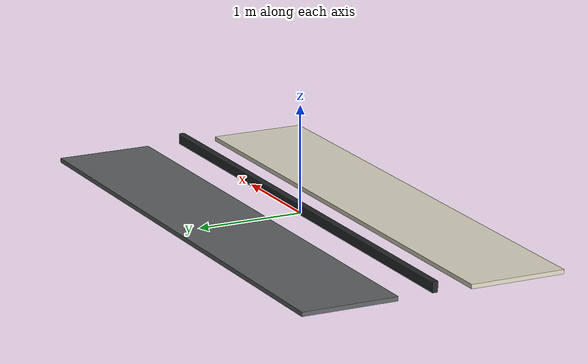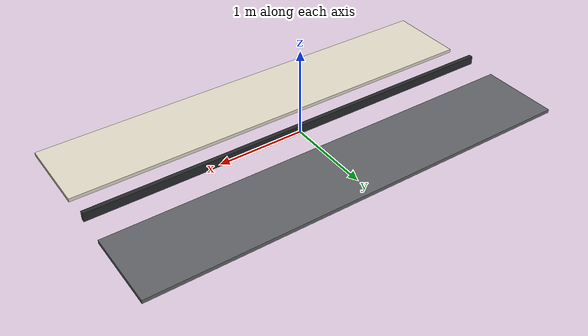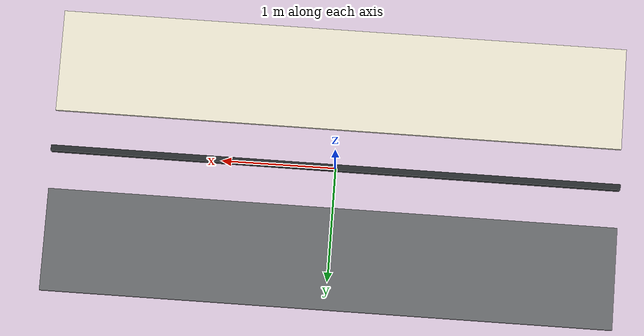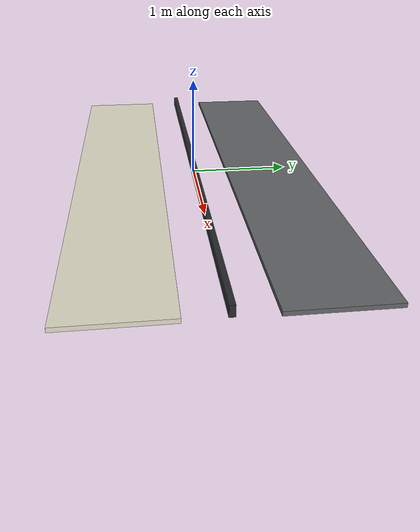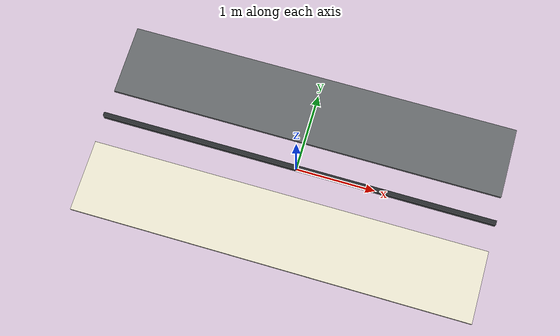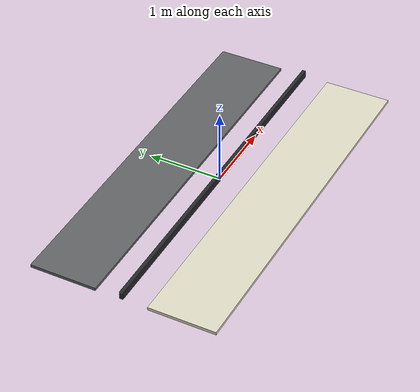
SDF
<?xml version="1.0"?>
<sdf version="1.9">
  <world name="friction_test">
    <plugin filename="gz-sim-physics-system" name="gz::sim::systems::Physics"/>
    <plugin filename="gz-sim-user-commands-system" name="gz::sim::systems::UserCommands"/>
    <plugin filename="gz-sim-scene-broadcaster-system" name="gz::sim::systems::SceneBroadcaster"/>
    <plugin filename="gz-sim-sensors-system" name="gz::sim::systems::Sensors">
      <render_engine>ogre2</render_engine>
    </plugin>
    <plugin filename="gz-sim-imu-system" name="gz::sim::systems::Imu"/>

    <gravity>0 0 -9.80665</gravity>

    <light name="sun" type="directional">
      <cast_shadows>true</cast_shadows>
      <pose>0 0 5 0 0 0</pose>
      <diffuse>0.9 0.9 0.85 1</diffuse>
      <specular>0.2 0.2 0.2 1</specular>
      <direction>-0.5 0.2 -1</direction>
    </light>

    <model name="normal_friction_lane">
      <static>true</static>
      <pose>0 0.8 0 0 0 0</pose>
      <link name="link">
        <collision name="collision">
          <geometry><box><size>5.0 0.9 0.04</size></box></geometry>
          <surface>
            <friction><ode><mu>1.0</mu><mu2>1.0</mu2></ode></friction>
          </surface>
        </collision>
        <visual name="visual">
          <geometry><box><size>5.0 0.9 0.04</size></box></geometry>
          <material><diffuse>0.38 0.39 0.40 1</diffuse></material>
        </visual>
      </link>
    </model>

    <model name="low_friction_lane">
      <static>true</static>
      <pose>0 -0.8 0 0 0 0</pose>
      <link name="link">
        <collision name="collision">
          <geometry><box><size>5.0 0.9 0.04</size></box></geometry>
          <surface>
            <friction><ode><mu>0.12</mu><mu2>0.08</mu2></ode></friction>
          </surface>
        </collision>
        <visual name="visual">
          <geometry><box><size>5.0 0.9 0.04</size></box></geometry>
          <material><diffuse>0.88 0.86 0.78 1</diffuse></material>
        </visual>
      </link>
    </model>

    <model name="center_divider">
      <static>true</static>
      <pose>0 0 0.05 0 0 0</pose>
      <link name="link">
        <collision name="collision">
          <geometry><box><size>5.0 0.05 0.10</size></box></geometry>
        </collision>
        <visual name="visual">
          <geometry><box><size>5.0 0.05 0.10</size></box></geometry>
          <material><diffuse>0.15 0.16 0.17 1</diffuse></material>
        </visual>
      </link>
    </model>
  </world>
</sdf>
